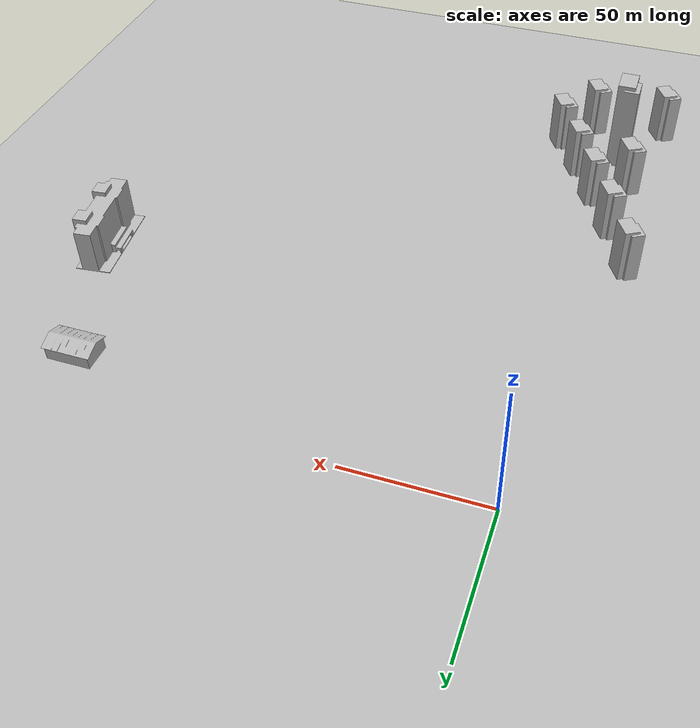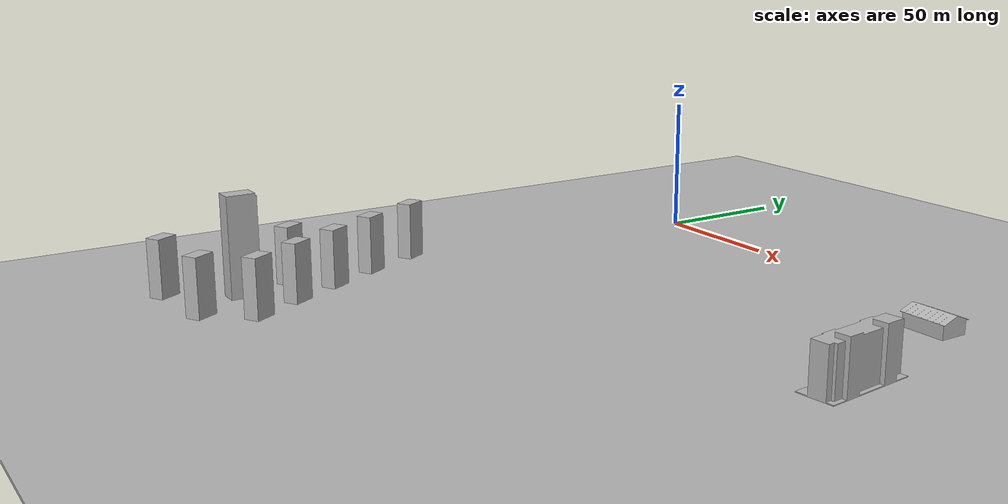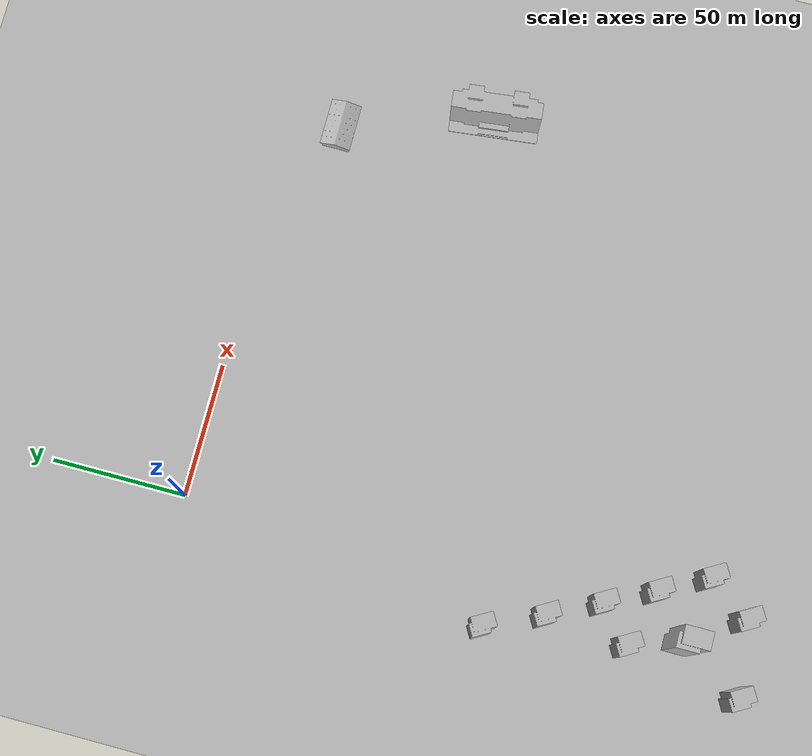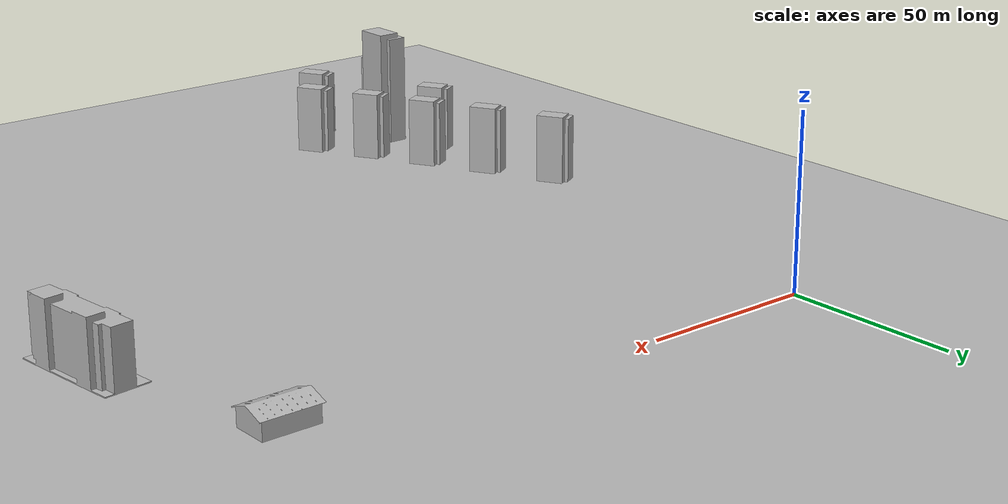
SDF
<sdf version="1.7">
 <world name="default">
  <model name="ground_plane">
   <static>1</static>
   <link name="link">
    <collision name="collision">
     <geometry><mesh><uri>model://ground_plane/scripts/plane.dae</uri><normal>0 0 1</normal></mesh></geometry>
     <surface><friction><ode><mu>100</mu><mu2>50</mu2></ode></friction></surface>
    </collision>
    <visual name="visual">
     <geometry><mesh><uri>model://ground_plane/scripts/plane.dae</uri><normal>0 0 1</normal></mesh></geometry>
     <material>
      <lighting>1</lighting>
      <script><uri>model://ground_plane/scripts/plane.jpg</uri><name>__default__</name></script>
      <shader type="pixel"/>
     </material>
    </visual>
   </link>
  </model>
  <model name="apartment4">
   <static>1</static>
   <link name="link_0">
    <inertial>
     <mass>1</mass>
     <inertia>
      <ixx>0.166667</ixx>
      <ixy>0</ixy>
      <ixz>0</ixz>
      <iyy>0.166667</iyy>
      <iyz>0</iyz>
      <izz>0.166667</izz>
     </inertia>
    </inertial>
    <pose>1e-06 -0 0 0 -0 0</pose>
    <visual name="visual">
     <geometry>
      <mesh><uri>model://apartment4/scripts/apartment1.dae</uri><scale>0.14 0.14 0.175</scale></mesh>
     </geometry>
     <material>
      <lighting>1</lighting>
      <script><uri>model://apartment4/scripts/apartment1.jpg</uri><name>__default__</name></script>
      <shader type="pixel"/>
     </material>
    </visual>
    <collision name="collision">
     <geometry>
      <mesh><uri>model://apartment4/scripts/apartment1.dae</uri><scale>0.14 0.14 0.175</scale></mesh>
     </geometry>
     <surface>
      <friction>
       <ode><mu>1</mu><mu2>1</mu2><fdir1>0 0 0</fdir1><slip1>0</slip1><slip2>0</slip2></ode>
       <torsional>
        <coefficient>1</coefficient>
        <patch_radius>0</patch_radius>
        <surface_radius>0</surface_radius>
        <use_patch_radius>1</use_patch_radius>
        <ode><slip>0</slip></ode>
       </torsional>
      </friction>
      <bounce><restitution_coefficient>0</restitution_coefficient><threshold>1e+06</threshold></bounce>
      <contact>
       <collide_without_contact>0</collide_without_contact>
       <collide_without_contact_bitmask>1</collide_without_contact_bitmask>
       <collide_bitmask>1</collide_bitmask>
       <ode>
        <soft_cfm>0</soft_cfm>
        <soft_erp>0.2</soft_erp>
        <kp>1e+13</kp>
        <kd>1</kd>
        <max_vel>0.01</max_vel>
        <min_depth>0</min_depth>
       </ode>
       <bullet>
        <split_impulse>1</split_impulse>
        <split_impulse_penetration_threshold>-0.01</split_impulse_penetration_threshold>
        <soft_cfm>0</soft_cfm>
        <soft_erp>0.2</soft_erp>
        <kp>1e+13</kp>
        <kd>1</kd>
       </bullet>
      </contact>
     </surface>
    </collision>
   </link>
   <static>0</static>
   <pose>-16.99 -115.87 0 0 -0 0.524325</pose>
  </model>
  <model name="apartment4_clone">
   <static>1</static>
   <link name="link_0">
    <inertial>
     <mass>1</mass>
     <inertia>
      <ixx>0.166667</ixx>
      <ixy>0</ixy>
      <ixz>0</ixz>
      <iyy>0.166667</iyy>
      <iyz>0</iyz>
      <izz>0.166667</izz>
     </inertia>
    </inertial>
    <pose>1e-06 -0 0 0 -0 0</pose>
    <visual name="visual">
     <geometry>
      <mesh><uri>model://apartment4/scripts/apartment1.dae</uri><scale>0.14 0.14 0.175</scale></mesh>
     </geometry>
     <material>
      <lighting>1</lighting>
      <script><uri>model://apartment4/scripts/apartment1.jpg</uri><name>__default__</name></script>
      <shader type="pixel"/>
     </material>
    </visual>
    <collision name="collision">
     <geometry>
      <mesh><uri>model://apartment4/scripts/apartment1.dae</uri><scale>0.14 0.14 0.175</scale></mesh>
     </geometry>
     <surface>
      <friction>
       <ode><mu>1</mu><mu2>1</mu2><fdir1>0 0 0</fdir1><slip1>0</slip1><slip2>0</slip2></ode>
       <torsional>
        <coefficient>1</coefficient>
        <patch_radius>0</patch_radius>
        <surface_radius>0</surface_radius>
        <use_patch_radius>1</use_patch_radius>
        <ode><slip>0</slip></ode>
       </torsional>
      </friction>
      <bounce><restitution_coefficient>0</restitution_coefficient><threshold>1e+06</threshold></bounce>
      <contact>
       <collide_without_contact>0</collide_without_contact>
       <collide_without_contact_bitmask>1</collide_without_contact_bitmask>
       <collide_bitmask>1</collide_bitmask>
       <ode>
        <soft_cfm>0</soft_cfm>
        <soft_erp>0.2</soft_erp>
        <kp>1e+13</kp>
        <kd>1</kd>
        <max_vel>0.01</max_vel>
        <min_depth>0</min_depth>
       </ode>
       <bullet>
        <split_impulse>1</split_impulse>
        <split_impulse_penetration_threshold>-0.01</split_impulse_penetration_threshold>
        <soft_cfm>0</soft_cfm>
        <soft_erp>0.2</soft_erp>
        <kp>1e+13</kp>
        <kd>1</kd>
       </bullet>
      </contact>
     </surface>
    </collision>
   </link>
   <static>0</static>
   <pose>-7.4236 -136.867 0 0 -0 0.524325</pose>
  </model>
  <model name="apartment4_clone_0">
   <static>1</static>
   <link name="link_0">
    <inertial>
     <mass>1</mass>
     <inertia>
      <ixx>0.166667</ixx>
      <ixy>0</ixy>
      <ixz>0</ixz>
      <iyy>0.166667</iyy>
      <iyz>0</iyz>
      <izz>0.166667</izz>
     </inertia>
    </inertial>
    <pose>1e-06 -0 0 0 -0 0</pose>
    <visual name="visual">
     <geometry>
      <mesh><uri>model://apartment4/scripts/apartment1.dae</uri><scale>0.14 0.14 0.175</scale></mesh>
     </geometry>
     <material>
      <lighting>1</lighting>
      <script><uri>model://apartment4/scripts/apartment1.jpg</uri><name>__default__</name></script>
      <shader type="pixel"/>
     </material>
    </visual>
    <collision name="collision">
     <geometry>
      <mesh><uri>model://apartment4/scripts/apartment1.dae</uri><scale>0.14 0.14 0.175</scale></mesh>
     </geometry>
     <surface>
      <friction>
       <ode><mu>1</mu><mu2>1</mu2><fdir1>0 0 0</fdir1><slip1>0</slip1><slip2>0</slip2></ode>
       <torsional>
        <coefficient>1</coefficient>
        <patch_radius>0</patch_radius>
        <surface_radius>0</surface_radius>
        <use_patch_radius>1</use_patch_radius>
        <ode><slip>0</slip></ode>
       </torsional>
      </friction>
      <bounce><restitution_coefficient>0</restitution_coefficient><threshold>1e+06</threshold></bounce>
      <contact>
       <collide_without_contact>0</collide_without_contact>
       <collide_without_contact_bitmask>1</collide_without_contact_bitmask>
       <collide_bitmask>1</collide_bitmask>
       <ode>
        <soft_cfm>0</soft_cfm>
        <soft_erp>0.2</soft_erp>
        <kp>1e+13</kp>
        <kd>1</kd>
        <max_vel>0.01</max_vel>
        <min_depth>0</min_depth>
       </ode>
       <bullet>
        <split_impulse>1</split_impulse>
        <split_impulse_penetration_threshold>-0.01</split_impulse_penetration_threshold>
        <soft_cfm>0</soft_cfm>
        <soft_erp>0.2</soft_erp>
        <kp>1e+13</kp>
        <kd>1</kd>
       </bullet>
      </contact>
     </surface>
    </collision>
   </link>
   <static>0</static>
   <pose>2.06364 -155.528 0 0 -0 0.524325</pose>
  </model>
  <model name="apartment4_clone_1">
   <static>1</static>
   <link name="link_0">
    <inertial>
     <mass>1</mass>
     <inertia>
      <ixx>0.166667</ixx>
      <ixy>0</ixy>
      <ixz>0</ixz>
      <iyy>0.166667</iyy>
      <iyz>0</iyz>
      <izz>0.166667</izz>
     </inertia>
    </inertial>
    <pose>1e-06 -0 0 0 -0 0</pose>
    <visual name="visual">
     <geometry>
      <mesh><uri>model://apartment4/scripts/apartment1.dae</uri><scale>0.14 0.14 0.175</scale></mesh>
     </geometry>
     <material>
      <lighting>1</lighting>
      <script><uri>model://apartment4/scripts/apartment1.jpg</uri><name>__default__</name></script>
      <shader type="pixel"/>
     </material>
    </visual>
    <collision name="collision">
     <geometry>
      <mesh><uri>model://apartment4/scripts/apartment1.dae</uri><scale>0.14 0.14 0.175</scale></mesh>
     </geometry>
     <surface>
      <friction>
       <ode><mu>1</mu><mu2>1</mu2><fdir1>0 0 0</fdir1><slip1>0</slip1><slip2>0</slip2></ode>
       <torsional>
        <coefficient>1</coefficient>
        <patch_radius>0</patch_radius>
        <surface_radius>0</surface_radius>
        <use_patch_radius>1</use_patch_radius>
        <ode><slip>0</slip></ode>
       </torsional>
      </friction>
      <bounce><restitution_coefficient>0</restitution_coefficient><threshold>1e+06</threshold></bounce>
      <contact>
       <collide_without_contact>0</collide_without_contact>
       <collide_without_contact_bitmask>1</collide_without_contact_bitmask>
       <collide_bitmask>1</collide_bitmask>
       <ode>
        <soft_cfm>0</soft_cfm>
        <soft_erp>0.2</soft_erp>
        <kp>1e+13</kp>
        <kd>1</kd>
        <max_vel>0.01</max_vel>
        <min_depth>0</min_depth>
       </ode>
       <bullet>
        <split_impulse>1</split_impulse>
        <split_impulse_penetration_threshold>-0.01</split_impulse_penetration_threshold>
        <soft_cfm>0</soft_cfm>
        <soft_erp>0.2</soft_erp>
        <kp>1e+13</kp>
        <kd>1</kd>
       </bullet>
      </contact>
     </surface>
    </collision>
   </link>
   <static>0</static>
   <pose>11.0722 -173.218 0 0 -0 0.524325</pose>
  </model>
  <model name="apartment4_clone_2">
   <static>1</static>
   <link name="link_0">
    <inertial>
     <mass>1</mass>
     <inertia>
      <ixx>0.166667</ixx>
      <ixy>0</ixy>
      <ixz>0</ixz>
      <iyy>0.166667</iyy>
      <iyz>0</iyz>
      <izz>0.166667</izz>
     </inertia>
    </inertial>
    <pose>1e-06 -0 0 0 -0 0</pose>
    <visual name="visual">
     <geometry>
      <mesh><uri>model://apartment4/scripts/apartment1.dae</uri><scale>0.14 0.14 0.175</scale></mesh>
     </geometry>
     <material>
      <lighting>1</lighting>
      <script><uri>model://apartment4/scripts/apartment1.jpg</uri><name>__default__</name></script>
      <shader type="pixel"/>
     </material>
    </visual>
    <collision name="collision">
     <geometry>
      <mesh><uri>model://apartment4/scripts/apartment1.dae</uri><scale>0.14 0.14 0.175</scale></mesh>
     </geometry>
     <surface>
      <friction>
       <ode><mu>1</mu><mu2>1</mu2><fdir1>0 0 0</fdir1><slip1>0</slip1><slip2>0</slip2></ode>
       <torsional>
        <coefficient>1</coefficient>
        <patch_radius>0</patch_radius>
        <surface_radius>0</surface_radius>
        <use_patch_radius>1</use_patch_radius>
        <ode><slip>0</slip></ode>
       </torsional>
      </friction>
      <bounce><restitution_coefficient>0</restitution_coefficient><threshold>1e+06</threshold></bounce>
      <contact>
       <collide_without_contact>0</collide_without_contact>
       <collide_without_contact_bitmask>1</collide_without_contact_bitmask>
       <collide_bitmask>1</collide_bitmask>
       <ode>
        <soft_cfm>0</soft_cfm>
        <soft_erp>0.2</soft_erp>
        <kp>1e+13</kp>
        <kd>1</kd>
        <max_vel>0.01</max_vel>
        <min_depth>0</min_depth>
       </ode>
       <bullet>
        <split_impulse>1</split_impulse>
        <split_impulse_penetration_threshold>-0.01</split_impulse_penetration_threshold>
        <soft_cfm>0</soft_cfm>
        <soft_erp>0.2</soft_erp>
        <kp>1e+13</kp>
        <kd>1</kd>
       </bullet>
      </contact>
     </surface>
    </collision>
   </link>
   <static>0</static>
   <pose>20.5975 -190.592 0 0 -0 0.524325</pose>
  </model>
  <model name="apartment4_clone_14">
   <static>1</static>
   <link name="link_0">
    <inertial>
     <mass>1</mass>
     <inertia>
      <ixx>0.166667</ixx>
      <ixy>0</ixy>
      <ixz>0</ixz>
      <iyy>0.166667</iyy>
      <iyz>0</iyz>
      <izz>0.166667</izz>
     </inertia>
    </inertial>
    <pose>1e-06 -0 0 0 -0 0</pose>
    <visual name="visual">
     <geometry>
      <mesh><uri>model://apartment4/scripts/apartment1.dae</uri><scale>0.14 0.14 0.175</scale></mesh>
     </geometry>
     <material>
      <lighting>1</lighting>
      <script><uri>model://apartment4/scripts/apartment1.jpg</uri><name>__default__</name></script>
      <shader type="pixel"/>
     </material>
    </visual>
    <collision name="collision">
     <geometry>
      <mesh><uri>model://apartment4/scripts/apartment1.dae</uri><scale>0.14 0.14 0.175</scale></mesh>
     </geometry>
     <surface>
      <friction>
       <ode><mu>1</mu><mu2>1</mu2><fdir1>0 0 0</fdir1><slip1>0</slip1><slip2>0</slip2></ode>
       <torsional>
        <coefficient>1</coefficient>
        <patch_radius>0</patch_radius>
        <surface_radius>0</surface_radius>
        <use_patch_radius>1</use_patch_radius>
        <ode><slip>0</slip></ode>
       </torsional>
      </friction>
      <bounce><restitution_coefficient>0</restitution_coefficient><threshold>1e+06</threshold></bounce>
      <contact>
       <collide_without_contact>0</collide_without_contact>
       <collide_without_contact_bitmask>1</collide_without_contact_bitmask>
       <collide_bitmask>1</collide_bitmask>
       <ode>
        <soft_cfm>0</soft_cfm>
        <soft_erp>0.2</soft_erp>
        <kp>1e+13</kp>
        <kd>1</kd>
        <max_vel>0.01</max_vel>
        <min_depth>0</min_depth>
       </ode>
       <bullet>
        <split_impulse>1</split_impulse>
        <split_impulse_penetration_threshold>-0.01</split_impulse_penetration_threshold>
        <soft_cfm>0</soft_cfm>
        <soft_erp>0.2</soft_erp>
        <kp>1e+13</kp>
        <kd>1</kd>
       </bullet>
      </contact>
     </surface>
    </collision>
   </link>
   <static>0</static>
   <pose>9.31508 -206.131 0 0 -0 0.524325</pose>
  </model>
  <model name="apartment4_clone_16">
   <static>1</static>
   <link name="link_0">
    <inertial>
     <mass>1</mass>
     <inertia>
      <ixx>0.166667</ixx>
      <ixy>0</ixy>
      <ixz>0</ixz>
      <iyy>0.166667</iyy>
      <iyz>0</iyz>
      <izz>0.166667</izz>
     </inertia>
    </inertial>
    <pose>1e-06 -0 0 0 -0 0</pose>
    <visual name="visual">
     <geometry>
      <mesh><uri>model://apartment4/scripts/apartment1.dae</uri><scale>0.14 0.14 0.175</scale></mesh>
     </geometry>
     <material>
      <lighting>1</lighting>
      <script><uri>model://apartment4/scripts/apartment1.jpg</uri><name>__default__</name></script>
      <shader type="pixel"/>
     </material>
    </visual>
    <collision name="collision">
     <geometry>
      <mesh><uri>model://apartment4/scripts/apartment1.dae</uri><scale>0.14 0.14 0.175</scale></mesh>
     </geometry>
     <surface>
      <friction>
       <ode><mu>1</mu><mu2>1</mu2><fdir1>0 0 0</fdir1><slip1>0</slip1><slip2>0</slip2></ode>
       <torsional>
        <coefficient>1</coefficient>
        <patch_radius>0</patch_radius>
        <surface_radius>0</surface_radius>
        <use_patch_radius>1</use_patch_radius>
        <ode><slip>0</slip></ode>
       </torsional>
      </friction>
      <bounce><restitution_coefficient>0</restitution_coefficient><threshold>1e+06</threshold></bounce>
      <contact>
       <collide_without_contact>0</collide_without_contact>
       <collide_without_contact_bitmask>1</collide_without_contact_bitmask>
       <collide_bitmask>1</collide_bitmask>
       <ode>
        <soft_cfm>0</soft_cfm>
        <soft_erp>0.2</soft_erp>
        <kp>1e+13</kp>
        <kd>1</kd>
        <max_vel>0.01</max_vel>
        <min_depth>0</min_depth>
       </ode>
       <bullet>
        <split_impulse>1</split_impulse>
        <split_impulse_penetration_threshold>-0.01</split_impulse_penetration_threshold>
        <soft_cfm>0</soft_cfm>
        <soft_erp>0.2</soft_erp>
        <kp>1e+13</kp>
        <kd>1</kd>
       </bullet>
      </contact>
     </surface>
    </collision>
   </link>
   <static>0</static>
   <pose>-10.2282 -167.21 0 0 -0 0.524325</pose>
  </model>
  <model name="apartment4_clone_38">
   <static>1</static>
   <link name="link_0">
    <inertial>
     <mass>1</mass>
     <inertia>
      <ixx>0.166667</ixx>
      <ixy>0</ixy>
      <ixz>0</ixz>
      <iyy>0.166667</iyy>
      <iyz>0</iyz>
      <izz>0.166667</izz>
     </inertia>
    </inertial>
    <pose>1e-06 -0 0 0 -0 0</pose>
    <visual name="visual">
     <geometry>
      <mesh><uri>model://apartment4/scripts/apartment1.dae</uri><scale>0.14 0.14 0.175</scale></mesh>
     </geometry>
     <material>
      <lighting>1</lighting>
      <script><uri>model://apartment4/scripts/apartment1.jpg</uri><name>__default__</name></script>
      <shader type="pixel"/>
     </material>
    </visual>
    <collision name="collision">
     <geometry>
      <mesh><uri>model://apartment4/scripts/apartment1.dae</uri><scale>0.14 0.14 0.175</scale></mesh>
     </geometry>
     <surface>
      <friction>
       <ode><mu>1</mu><mu2>1</mu2><fdir1>0 0 0</fdir1><slip1>0</slip1><slip2>0</slip2></ode>
       <torsional>
        <coefficient>1</coefficient>
        <patch_radius>0</patch_radius>
        <surface_radius>0</surface_radius>
        <use_patch_radius>1</use_patch_radius>
        <ode><slip>0</slip></ode>
       </torsional>
      </friction>
      <bounce><restitution_coefficient>0</restitution_coefficient><threshold>1e+06</threshold></bounce>
      <contact>
       <collide_without_contact>0</collide_without_contact>
       <collide_without_contact_bitmask>1</collide_without_contact_bitmask>
       <collide_bitmask>1</collide_bitmask>
       <ode>
        <soft_cfm>0</soft_cfm>
        <soft_erp>0.2</soft_erp>
        <kp>1e+13</kp>
        <kd>1</kd>
        <max_vel>0.01</max_vel>
        <min_depth>0</min_depth>
       </ode>
       <bullet>
        <split_impulse>1</split_impulse>
        <split_impulse_penetration_threshold>-0.01</split_impulse_penetration_threshold>
        <soft_cfm>0</soft_cfm>
        <soft_erp>0.2</soft_erp>
        <kp>1e+13</kp>
        <kd>1</kd>
       </bullet>
      </contact>
     </surface>
    </collision>
   </link>
   <static>0</static>
   <pose>-18.5758 -209.467 0 0 -0 0.524325</pose>
  </model>
  <model name="tower_5">
   <static>1</static>
   <link name="link_0">
    <inertial>
     <mass>1</mass>
     <inertia>
      <ixx>0.166667</ixx>
      <ixy>0</ixy>
      <ixz>0</ixz>
      <iyy>0.166667</iyy>
      <iyz>0</iyz>
      <izz>0.166667</izz>
     </inertia>
    </inertial>
    <pose>1e-06 -0 0 0 -0 0</pose>
    <visual name="visual">
     <geometry><mesh><uri>model://tower/scripts/apartment1.dae</uri><scale>0.17 0.17 0.3</scale></mesh></geometry>
     <material>
      <lighting>1</lighting>
      <script><uri>model://tower/scripts/apartment1.jpg</uri><name>__default__</name></script>
      <shader type="pixel"/>
     </material>
    </visual>
    <collision name="collision">
     <geometry><mesh><uri>model://tower/scripts/apartment1.dae</uri><scale>0.17 0.17 0.3</scale></mesh></geometry>
     <surface>
      <friction>
       <ode><mu>1</mu><mu2>1</mu2><fdir1>0 0 0</fdir1><slip1>0</slip1><slip2>0</slip2></ode>
       <torsional>
        <coefficient>1</coefficient>
        <patch_radius>0</patch_radius>
        <surface_radius>0</surface_radius>
        <use_patch_radius>1</use_patch_radius>
        <ode><slip>0</slip></ode>
       </torsional>
      </friction>
      <bounce><restitution_coefficient>0</restitution_coefficient><threshold>1e+06</threshold></bounce>
      <contact>
       <collide_without_contact>0</collide_without_contact>
       <collide_without_contact_bitmask>1</collide_without_contact_bitmask>
       <collide_bitmask>1</collide_bitmask>
       <ode>
        <soft_cfm>0</soft_cfm>
        <soft_erp>0.2</soft_erp>
        <kp>1e+13</kp>
        <kd>1</kd>
        <max_vel>0.01</max_vel>
        <min_depth>0</min_depth>
       </ode>
       <bullet>
        <split_impulse>1</split_impulse>
        <split_impulse_penetration_threshold>-0.01</split_impulse_penetration_threshold>
        <soft_cfm>0</soft_cfm>
        <soft_erp>0.2</soft_erp>
        <kp>1e+13</kp>
        <kd>1</kd>
       </bullet>
      </contact>
     </surface>
    </collision>
   </link>
   <static>0</static>
   <pose>-4.05257 -187.141 0 0 -0 0</pose>
  </model>
  <model name="farmhouse2_0">
   <static>1</static>
   <link name="link_0">
    <inertial>
     <mass>1</mass>
     <inertia>
      <ixx>0.166667</ixx>
      <ixy>0</ixy>
      <ixz>0</ixz>
      <iyy>0.166667</iyy>
      <iyz>0</iyz>
      <izz>0.166667</izz>
     </inertia>
    </inertial>
    <pose>-0 -3e-06 0 0 -0 0</pose>
    <visual name="visual">
     <geometry><mesh><uri>model://farmhouse2/scripts/farmhouse.dae</uri><scale>8 8 5</scale></mesh></geometry>
     <material>
      <lighting>1</lighting>
      <script><uri>model://farmhouse2/scripts/farmhouse.jpg</uri><name>__default__</name></script>
      <shader type="pixel"/>
     </material>
    </visual>
    <collision name="collision">
     <geometry><mesh><uri>model://farmhouse/scripts/farmhouse.dae</uri><scale>8 8 5</scale></mesh></geometry>
     <surface>
      <friction>
       <ode><mu>1</mu><mu2>1</mu2><fdir1>0 0 0</fdir1><slip1>0</slip1><slip2>0</slip2></ode>
       <torsional>
        <coefficient>1</coefficient>
        <patch_radius>0</patch_radius>
        <surface_radius>0</surface_radius>
        <use_patch_radius>1</use_patch_radius>
        <ode><slip>0</slip></ode>
       </torsional>
      </friction>
      <bounce><restitution_coefficient>0</restitution_coefficient><threshold>1e+06</threshold></bounce>
      <contact>
       <collide_without_contact>0</collide_without_contact>
       <collide_without_contact_bitmask>1</collide_without_contact_bitmask>
       <collide_bitmask>1</collide_bitmask>
       <ode>
        <soft_cfm>0</soft_cfm>
        <soft_erp>0.2</soft_erp>
        <kp>1e+13</kp>
        <kd>1</kd>
        <max_vel>0.01</max_vel>
        <min_depth>0</min_depth>
       </ode>
       <bullet>
        <split_impulse>1</split_impulse>
        <split_impulse_penetration_threshold>-0.01</split_impulse_penetration_threshold>
        <soft_cfm>0</soft_cfm>
        <soft_erp>0.2</soft_erp>
        <kp>1e+13</kp>
        <kd>1</kd>
       </bullet>
      </contact>
     </surface>
    </collision>
   </link>
   <static>0</static>
   <pose>149.08 -18.1001 0 0 -0 0</pose>
  </model>
  <model name="apartment7_clone_0">
   <static>1</static>
   <link name="link_0">
    <inertial>
     <mass>1</mass>
     <inertia>
      <ixx>0.166667</ixx>
      <ixy>0</ixy>
      <ixz>0</ixz>
      <iyy>0.166667</iyy>
      <iyz>0</iyz>
      <izz>0.166667</izz>
     </inertia>
    </inertial>
    <pose>0.000226 2e-06 0 0 -0 0</pose>
    <visual name="visual">
     <geometry>
      <mesh><uri>model://apartment0/scripts/apartment.dae</uri><scale>0.45 0.21 0.11</scale></mesh>
     </geometry>
     <material>
      <lighting>1</lighting>
      <script><uri>model://apartment0/scripts/building.jpg</uri><name>__default__</name></script>
      <shader type="pixel"/>
     </material>
    </visual>
    <collision name="collision">
     <geometry>
      <mesh><uri>model://apartment0/scripts/apartment.dae</uri><scale>0.45 0.21 0.11</scale></mesh>
     </geometry>
     <surface>
      <friction>
       <ode><mu>1</mu><mu2>1</mu2><fdir1>0 0 0</fdir1><slip1>0</slip1><slip2>0</slip2></ode>
       <torsional>
        <coefficient>1</coefficient>
        <patch_radius>0</patch_radius>
        <surface_radius>0</surface_radius>
        <use_patch_radius>1</use_patch_radius>
        <ode><slip>0</slip></ode>
       </torsional>
      </friction>
      <bounce><restitution_coefficient>0</restitution_coefficient><threshold>1e+06</threshold></bounce>
      <contact>
       <collide_without_contact>0</collide_without_contact>
       <collide_without_contact_bitmask>1</collide_without_contact_bitmask>
       <collide_bitmask>1</collide_bitmask>
       <ode>
        <soft_cfm>0</soft_cfm>
        <soft_erp>0.2</soft_erp>
        <kp>1e+13</kp>
        <kd>1</kd>
        <max_vel>0.01</max_vel>
        <min_depth>0</min_depth>
       </ode>
       <bullet>
        <split_impulse>1</split_impulse>
        <split_impulse_penetration_threshold>-0.01</split_impulse_penetration_threshold>
        <soft_cfm>0</soft_cfm>
        <soft_erp>0.2</soft_erp>
        <kp>1e+13</kp>
        <kd>1</kd>
       </bullet>
      </contact>
     </surface>
    </collision>
   </link>
   <static>0</static>
   <pose>167.902 -73.2643 0.315608 0 0 -1.46088</pose>
  </model>
 </world>
</sdf>
